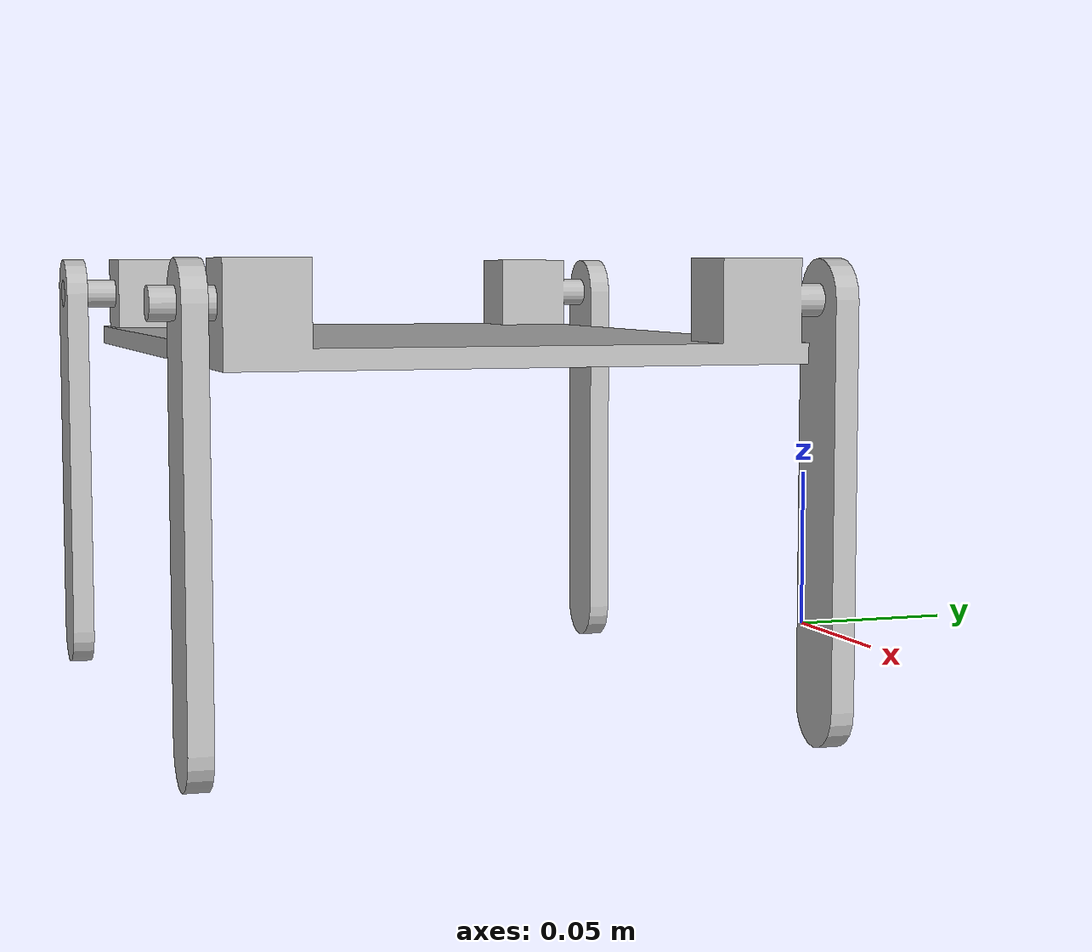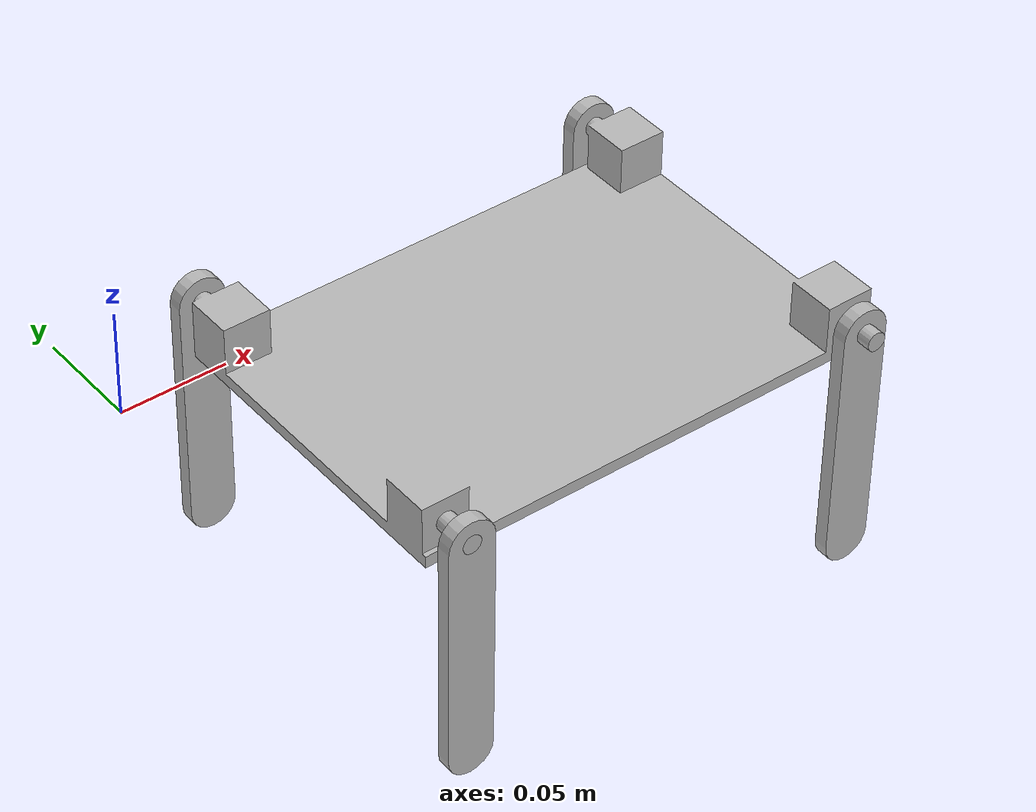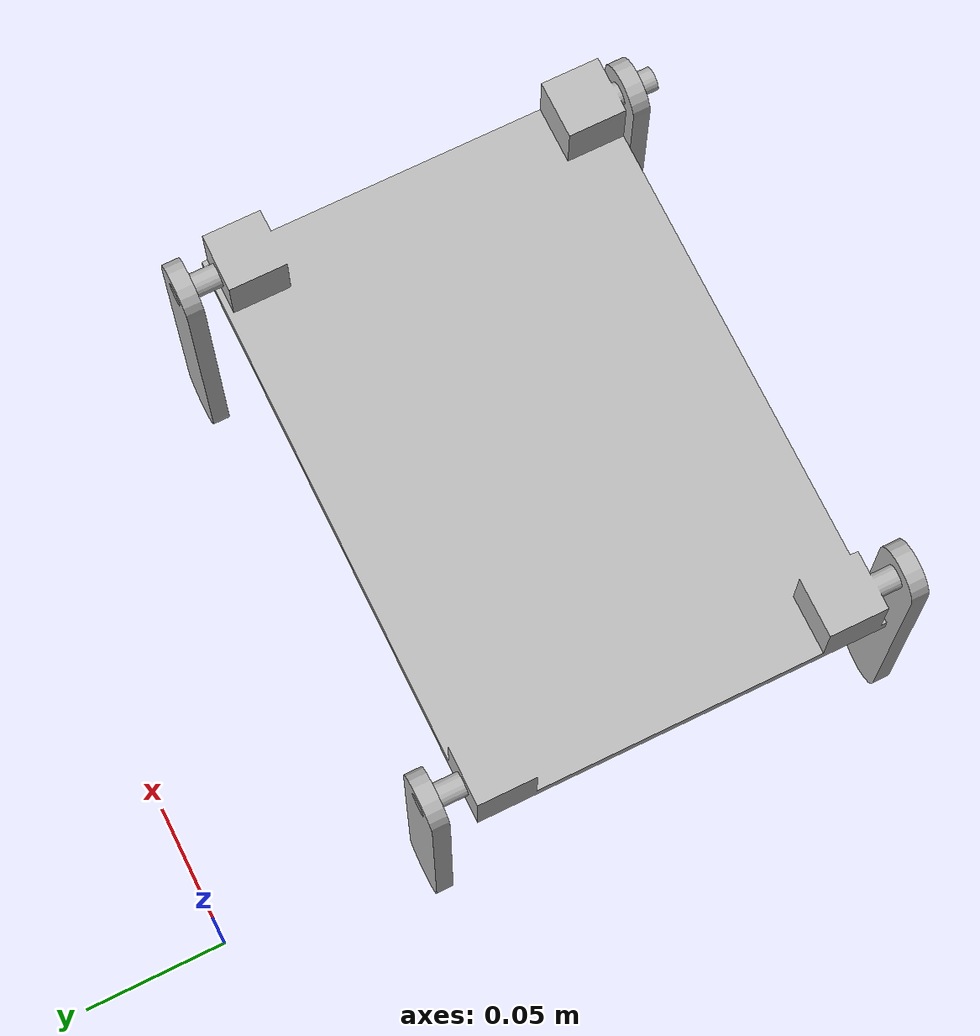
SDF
<sdf version='1.6'>
  <model name='scout'>
    <link name='base_link'>
      <pose frame=''>0 0 0 0 -0 0</pose>
      <inertial>
        <pose frame=''>0.083033 -0.15433 0.10443 0 -0 0</pose>
        <mass>0.44358</mass>
        <inertia>
          <ixx>0.00132422</ixx>
          <ixy>0</ixy>
          <ixz>2.48018e-05</ixz>
          <iyy>0.00409973</iyy>
          <iyz>0</iyz>
          <izz>0.0028258</izz>
        </inertia>
      </inertial>
      <collision name='base_link_collision'>
        <pose frame=''>0 0 0 0 -0 0</pose>
        <geometry>
          <mesh>
            <scale>1 1 1</scale>
            <uri>model://scout/meshes/base_link.STL</uri>
          </mesh>
        </geometry>
      </collision>
      <visual name='base_link_visual'>
        <pose frame=''>0 0 0 0 -0 0</pose>
        <geometry>
          <mesh>
            <scale>1 1 1</scale>
            <uri>model://scout/meshes/base_link.STL</uri>
          </mesh>
        </geometry>
      </visual>
    </link>
    <link name='leg1'>
      <pose frame=''>0.17303 -0.071332 0.10916 -1.57079 -1.57079 3.14159</pose>
      <inertial>
        <pose frame=''>-0.05111 0 0.003 0 -0 0</pose>
        <mass>0.0163</mass>
        <inertia>
          <ixx>5.84e-07</ixx>
          <ixy>0</ixy>
          <ixz>0</ixz>
          <iyy>1.7794e-05</iyy>
          <iyz>0</iyz>
          <izz>1.828e-05</izz>
        </inertia>
      </inertial>
      <collision name='leg1_collision'>
        <pose frame=''>0 0 0 0 -0 0</pose>
        <geometry>
          <mesh>
            <scale>1 1 1</scale>
            <uri>model://scout/meshes/leg1.STL</uri>
          </mesh>
        </geometry>
      </collision>
      <visual name='leg1_visual'>
        <pose frame=''>0 0 0 0 -0 0</pose>
        <geometry>
          <mesh>
            <scale>1 1 1</scale>
            <uri>model://scout/meshes/leg1.STL</uri>
          </mesh>
        </geometry>
      </visual>
    </link>
    <joint name='joint1' type='revolute'>
      <child>leg1</child>
      <parent>base_link</parent>
      <axis>
        <xyz>4e-06 -1 0</xyz>
        <limit>
          <lower>-1e+16</lower>
          <upper>1e+16</upper>
        </limit>
        <dynamics>
          <damping>0</damping>
          <friction>100</friction>
          <spring_reference>0</spring_reference>
          <spring_stiffness>0</spring_stiffness>
        </dynamics>
        <use_parent_model_frame>1</use_parent_model_frame>
      </axis>
    </joint>
    <link name='leg2'>
      <pose frame=''>-0.006967 -0.069332 0.10916 -1.57079 -1.57079 3.14159</pose>
      <inertial>
        <pose frame=''>-0.05111 -0 0.003 0 -0 0</pose>
        <mass>0.0163</mass>
        <inertia>
          <ixx>5.84e-07</ixx>
          <ixy>0</ixy>
          <ixz>0</ixz>
          <iyy>1.7794e-05</iyy>
          <iyz>0</iyz>
          <izz>1.828e-05</izz>
        </inertia>
      </inertial>
      <collision name='leg2_collision'>
        <pose frame=''>0 0 0 0 -0 0</pose>
        <geometry>
          <mesh>
            <scale>1 1 1</scale>
            <uri>model://scout/meshes/leg2.STL</uri>
          </mesh>
        </geometry>
      </collision>
      <visual name='leg2_visual'>
        <pose frame=''>0 0 0 0 -0 0</pose>
        <geometry>
          <mesh>
            <scale>1 1 1</scale>
            <uri>model://scout/meshes/leg2.STL</uri>
          </mesh>
        </geometry>
      </visual>
    </link>
    <joint name='joint2' type='revolute'>
      <child>leg2</child>
      <parent>base_link</parent>
      <axis>
        <xyz>4e-06 -1 0</xyz>
        <limit>
          <lower>-1e+16</lower>
          <upper>1e+16</upper>
        </limit>
        <dynamics>
          <damping>0</damping>
          <friction>100</friction>
          <spring_reference>0</spring_reference>
          <spring_stiffness>0</spring_stiffness>
        </dynamics>
        <use_parent_model_frame>1</use_parent_model_frame>
      </axis>
    </joint>
    <link name='leg3'>
      <pose frame=''>0.17303 -0.23333 0.10916 -1.57079 -1.57079 3.14159</pose>
      <inertial>
        <pose frame=''>-0.05111 0 -0.003 0 -0 0</pose>
        <mass>0.0163</mass>
        <inertia>
          <ixx>5.84e-07</ixx>
          <ixy>0</ixy>
          <ixz>0</ixz>
          <iyy>1.7794e-05</iyy>
          <iyz>0</iyz>
          <izz>1.828e-05</izz>
        </inertia>
      </inertial>
      <collision name='leg3_collision'>
        <pose frame=''>0 0 0 0 -0 0</pose>
        <geometry>
          <mesh>
            <scale>1 1 1</scale>
            <uri>model://scout/meshes/leg3.STL</uri>
          </mesh>
        </geometry>
      </collision>
      <visual name='leg3_visual'>
        <pose frame=''>0 0 0 0 -0 0</pose>
        <geometry>
          <mesh>
            <scale>1 1 1</scale>
            <uri>model://scout/meshes/leg3.STL</uri>
          </mesh>
        </geometry>
      </visual>
    </link>
    <joint name='joint3' type='revolute'>
      <child>leg3</child>
      <parent>base_link</parent>
      <axis>
        <xyz>-4e-06 1 -0</xyz>
        <limit>
          <lower>-1e+16</lower>
          <upper>1e+16</upper>
        </limit>
        <dynamics>
          <damping>0</damping>
          <friction>100</friction>
          <spring_reference>0</spring_reference>
          <spring_stiffness>0</spring_stiffness>
        </dynamics>
        <use_parent_model_frame>1</use_parent_model_frame>
      </axis>
    </joint>
    <link name='leg4'>
      <pose frame=''>-0.006967 -0.23133 0.10916 -1.57079 -1.57079 3.14159</pose>
      <inertial>
        <pose frame=''>-0.05111 0 0.003 0 -0 0</pose>
        <mass>0.0163</mass>
        <inertia>
          <ixx>5.84e-07</ixx>
          <ixy>0</ixy>
          <ixz>0</ixz>
          <iyy>1.7794e-05</iyy>
          <iyz>0</iyz>
          <izz>1.828e-05</izz>
        </inertia>
      </inertial>
      <collision name='leg4_collision'>
        <pose frame=''>0 0 0 0 -0 0</pose>
        <geometry>
          <mesh>
            <scale>1 1 1</scale>
            <uri>model://scout/meshes/leg4.STL</uri>
          </mesh>
        </geometry>
      </collision>
      <visual name='leg4_visual'>
        <pose frame=''>0 0 0 0 -0 0</pose>
        <geometry>
          <mesh>
            <scale>1 1 1</scale>
            <uri>model://scout/meshes/leg4.STL</uri>
          </mesh>
        </geometry>
      </visual>
    </link>
    <joint name='joint4' type='revolute'>
      <child>leg4</child>
      <parent>base_link</parent>
      <axis>
        <xyz>4e-06 -1 0</xyz>
        <limit>
          <lower>-1e+16</lower>
          <upper>1e+16</upper>
        </limit>
        <dynamics>
          <damping>0</damping>
          <friction>100</friction>
          <spring_reference>0</spring_reference>
          <spring_stiffness>0</spring_stiffness>
        </dynamics>
        <use_parent_model_frame>1</use_parent_model_frame>
      </axis>
    </joint>
    <plugin name='gazebo_ros_control' filename='libgazebo_ros_control.so'>
      <robotNamespace>/scout</robotNamespace>
      <robotSimType>gazebo_ros_control/DefaultRobotHWSim</robotSimType>
    </plugin>
    <static>0</static>
    <plugin name='object_controller' filename='libgazebo_ros_planar_move.so'>
      <commandTopic>/scout/cmd_vel</commandTopic>
      <odometryTopic>odom</odometryTopic>
      <odometryFrame>odom</odometryFrame>
      <odometryRate>20.0</odometryRate>
      <robotBaseFrame>base_link</robotBaseFrame>
    </plugin>
  </model>
</sdf>
